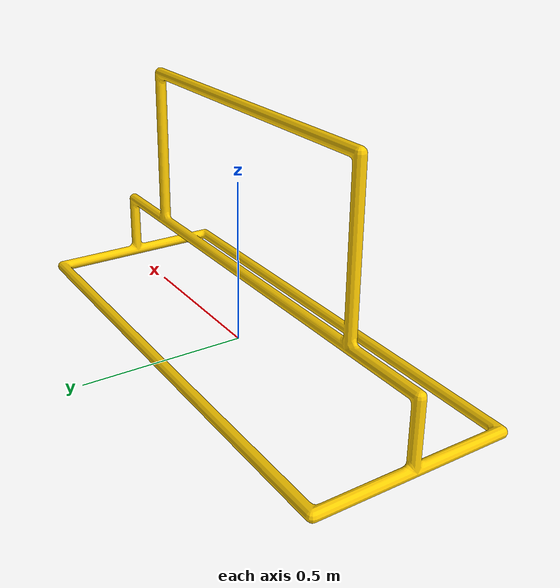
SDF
<?xml version="1.0" ?>
<sdf version="1.7">
  <model name="rectangle">
    <static>true</static>
    <link name="link">
      <collision name="rectangle_col">
        <pose>0 0 0 0 0 0</pose>
        <geometry>
          <mesh>
            <uri>models://rectangle/rectangle.dae</uri>
          </mesh>
        </geometry>
      </collision>
      <visual name="pool_visual">
        <pose>0 0 0 0 0 0</pose>
        <geometry>
          <mesh>
            <uri>models://rectangle/rectangle.dae</uri>
          </mesh>
        </geometry>
        <material>
          <ambient>1 0.8 0 1</ambient>
          <diffuse>1 0.8 0 1</diffuse>
          <specular>0.1 0.1 0.1 1</specular>
          <emissive>1 0.8 0 1</emissive>
        </material>
      </visual>
    </link>
  </model>
</sdf>
